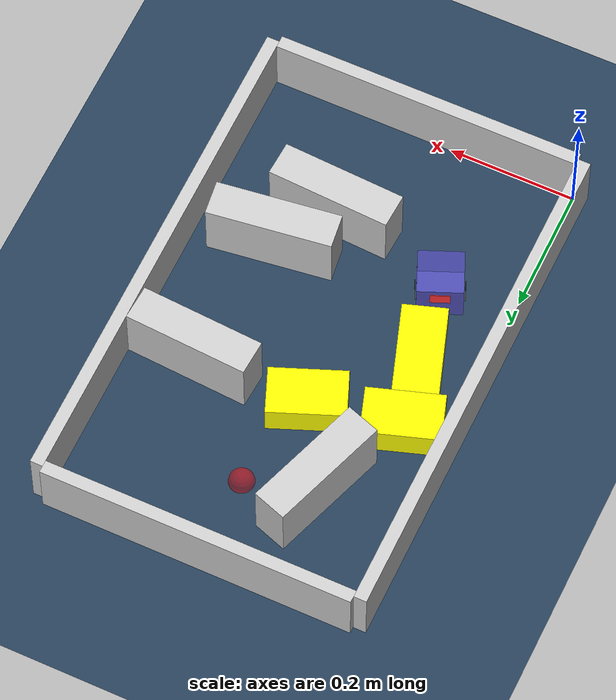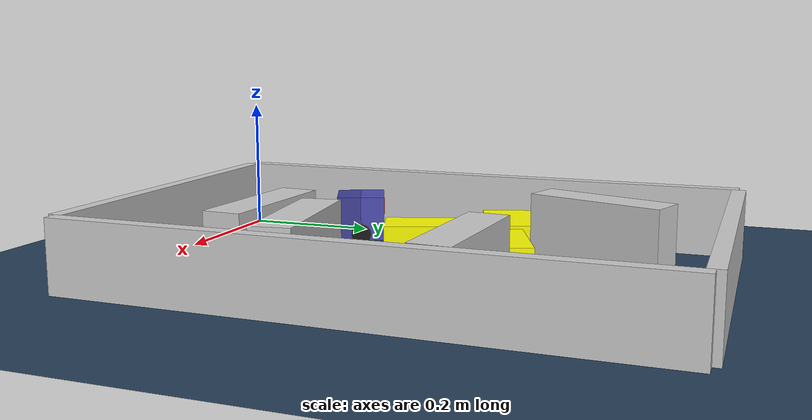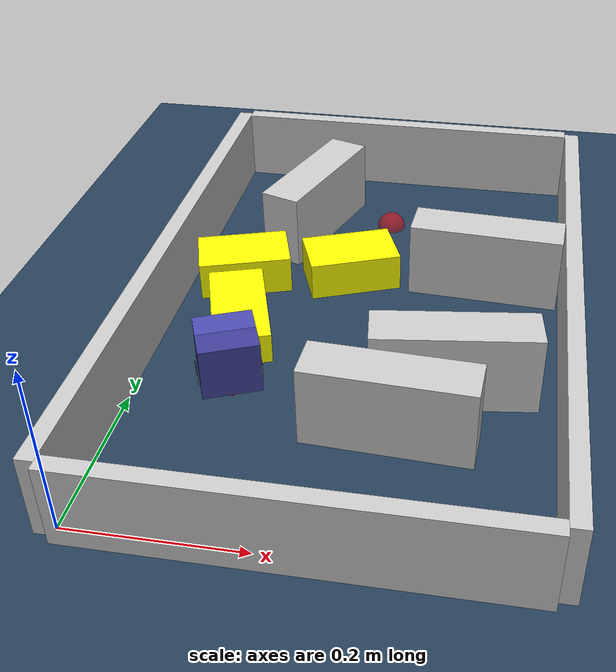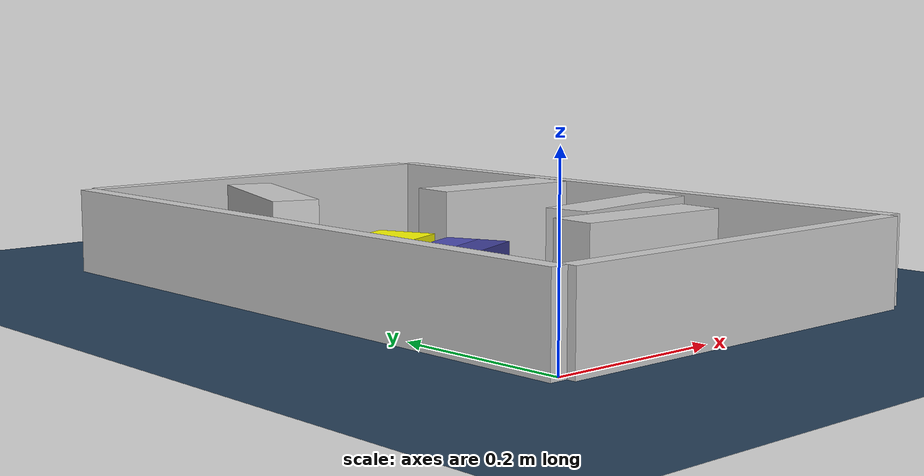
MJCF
<?xml version='1.0' encoding='utf-8'?>
<mujoco model="real_buildable">
  <compiler angle="degree" />
  <option timestep="0.002" integrator="implicitfast" iterations="100" cone="elliptic" />
  <default>
    <geom density="1" />
  </default>
  <asset>
    <texture builtin="gradient" height="3072" rgb1="0.3 0.5 0.7" rgb2="0 0 0" type="skybox" width="512" />
    <texture builtin="checker" height="300" mark="edge" markrgb="0.8 0.8 0.8" name="groundplane" rgb1="0.2 0.3 0.4" rgb2="0.1 0.2 0.3" type="2d" width="300" />
    <material name="groundplane" reflectance="0.2" texrepeat="5 5" texture="groundplane" texuniform="true" />
  </asset>
  <worldbody>
    <light dir="0 0 -1" directional="true" pos="0 0 1.5" />
    <geom name="floor" type="plane" condim="4" friction="0.5 0.005 0.001" material="groundplane" size="0 0 0.05" />
    <body name="walls">
      <geom name="wall_boundary_left" type="box" condim="4" friction="1.0 0.005 0.0001" rgba="0.8 0.8 0.8 1" pos="-0.010000 0.387500 0.050000" euler="0 0 0.000000" size="0.010000 0.397500 0.050000" />
      <geom name="wall_boundary_right" type="box" condim="4" friction="1.0 0.005 0.0001" rgba="0.8 0.8 0.8 1" pos="0.500000 0.387500 0.050000" euler="0 0 0.000000" size="0.010000 0.397500 0.050000" />
      <geom name="wall_boundary_bottom" type="box" condim="4" friction="1.0 0.005 0.0001" rgba="0.8 0.8 0.8 1" pos="0.245000 -0.010000 0.050000" euler="0 0 0.000000" size="0.245000 0.010000 0.050000" />
      <geom name="wall_boundary_top" type="box" condim="4" friction="1.0 0.005 0.0001" rgba="0.8 0.8 0.8 1" pos="0.245000 0.785000 0.050000" euler="0 0 0.000000" size="0.245000 0.010000 0.050000" />
      <geom name="wall_inner_1" type="box" condim="4" friction="1.0 0.005 0.0001" rgba="0.8 0.8 0.8 1" pos="0.307452 0.181307 0.050000" euler="0 0 -3.001577" size="0.097500 0.027500 0.050000" />
      <geom name="wall_inner_2" type="box" condim="4" friction="1.0 0.005 0.0001" rgba="0.8 0.8 0.8 1" pos="0.369012 0.266334 0.050000" euler="0 0 7.505534" size="0.097500 0.027500 0.050000" />
      <geom name="wall_inner_3" type="box" condim="4" friction="1.0 0.005 0.0001" rgba="0.8 0.8 0.8 1" pos="0.391000 0.492000 0.050000" euler="0 0 176.500000" size="0.097500 0.027500 0.050000" />
      <geom name="wall_inner_4" type="box" condim="4" friction="1.0 0.005 0.0001" rgba="0.8 0.8 0.8 1" pos="0.138000 0.613000 0.050000" euler="0 0 71.100000" size="0.097500 0.027500 0.050000" />
    </body>
    <body name="car" pos="0.11017796768229778 0.24068966903249808 0.01" quat="0.55361376823847397 0 0 0.83277355602636494">
      <freejoint name="car_freejoint" />
      <inertial pos="0 0 0.0375" mass="0.35" diaginertia="0.000266 0.000266 0.000286" />
      <geom name="front_chassis_collision" type="box" pos="0.0175 0 0.0375" size="0.0175 0.035 0.0325" rgba="0.3 0.3 0.7 1" />
      <geom name="rear_chassis_collision" type="box" pos="-0.0175 0 0.0375" size="0.0175 0.035 0.0325" rgba="0.25 0.25 0.6 1" />
      <geom name="front_marker" type="box" pos="0.034 0 0.0505" size="0.002 0.015 0.01" rgba="1 0.2 0.2 1" contype="0" conaffinity="0" />
      <body name="rear_support_body" pos="-0.03 0 0.0025">
        <joint name="rear_caster_joint" type="ball" damping="0.0001" />
        <inertial pos="0 0 0" mass="0.025" diaginertia="0.000001 0.000001 0.000001" />
        <geom name="rear_support" type="sphere" pos="0 0 0" size="0.0025" friction="0 0 0" rgba="0.7 0.1 0.1 1" />
      </body>
      <body name="front_support_body" pos="0.03 0 0.0025">
        <joint name="front_caster_joint" type="ball" damping="0.0001" />
        <inertial pos="0 0 0" mass="0.025" diaginertia="0.000001 0.000001 0.000001" />
        <geom name="front_support" type="sphere" pos="0 0 0" size="0.0025" friction="0 0 0" rgba="0.1 0.7 0.1 1" />
      </body>
      <body name="left_wheel" pos="0 0.0375 0.015">
        <inertial pos="0 0 0" mass="0.05" diaginertia="0.000003 0.000006 0.000003" />
        <joint name="left_wheel_joint" type="hinge" axis="0 1 0" damping="0.01" armature="0.0001" />
        <geom name="left_wheel_collision" type="cylinder" size="0.015 0.0005" euler="90 0 0" rgba="0.1 0.1 0.1 1" />
      </body>
      <body name="right_wheel" pos="0 -0.0375 0.015">
        <inertial pos="0 0 0" mass="0.05" diaginertia="0.000003 0.000006 0.000003" />
        <joint name="right_wheel_joint" type="hinge" axis="0 1 0" damping="0.01" armature="0.0001" />
        <geom name="right_wheel_collision" type="cylinder" size="0.015 0.0005" euler="90 0 0" rgba="0.1 0.1 0.1 1" />
      </body>
    </body>
    <body name="obstacle_0_movable">
      <geom name="obstacle_0_movable" condim="4" pos="0.091530893167920513 0.35327141360495085 0.02" friction="1 0.005 0.0001" rgba="1 1 0 1" size="0.035000 0.075000 0.020000" type="box" mass="0.1" quat="0.98696881623111743 0 0 0.1609116396888263" />
      <joint type="free" />
    </body>
    <body name="obstacle_1_movable">
      <geom name="obstacle_1_movable" condim="4" pos="0.21000000000000013 0.4899999999999991 0.025000000000000001" friction="1 0.005 0.0001" rgba="1 1 0 1" size="0.037500 0.060000 0.025000" type="box" mass="0.1" quat="0.82854926907692372 0 0 -0.55991616221725149" />
      <joint type="free" />
    </body>
    <body name="obstacle_2_movable">
      <geom name="obstacle_2_movable" condim="4" pos="0.068543025640109806 0.46405006766854107 0.025000000000000001" friction="1 0.005 0.0001" rgba="1 1 0 1" size="0.037500 0.060000 0.025000" type="box" mass="0.1" quat="0.585670912672552 0 0 0.81054893871332645" />
      <joint type="free" />
    </body>
    <site name="goal" type="sphere" pos="0.245000 0.640000 0.0" size="0.02" rgba="1 0 0 0.5" />
  </worldbody>
  <actuator>
    <velocity name="left_wheel_drive" joint="left_wheel_joint" ctrlrange="-25 25" kv="0.75" forcerange="-0.5 0.5" />
    <velocity name="right_wheel_drive" joint="right_wheel_joint" ctrlrange="-25 25" kv="0.75" forcerange="-0.5 0.5" />
  </actuator>
</mujoco>
